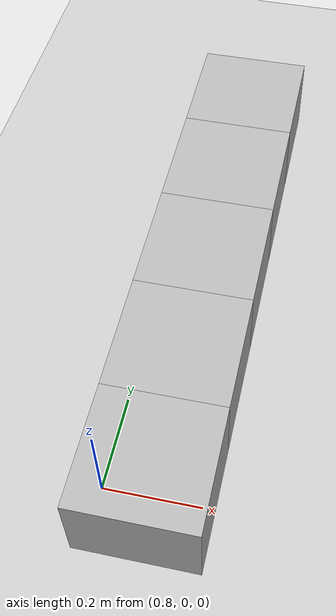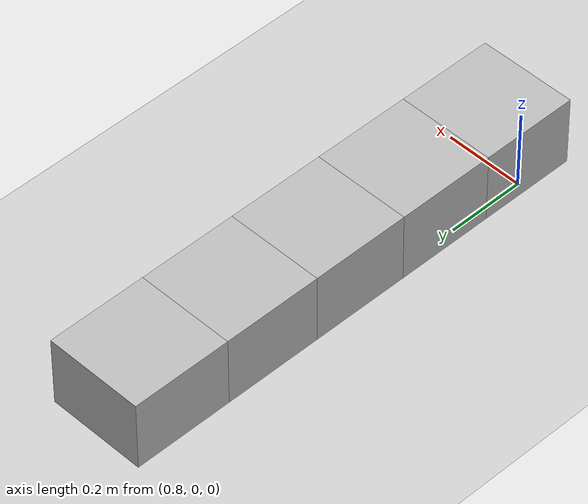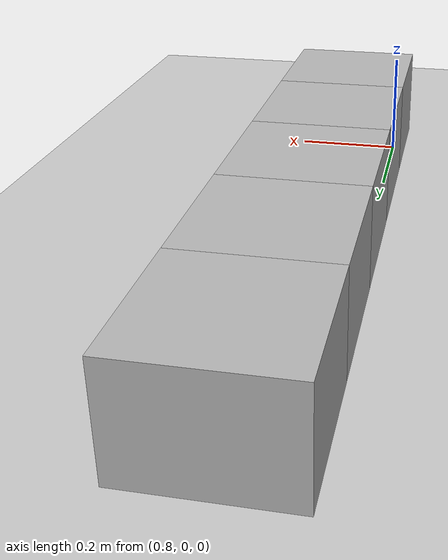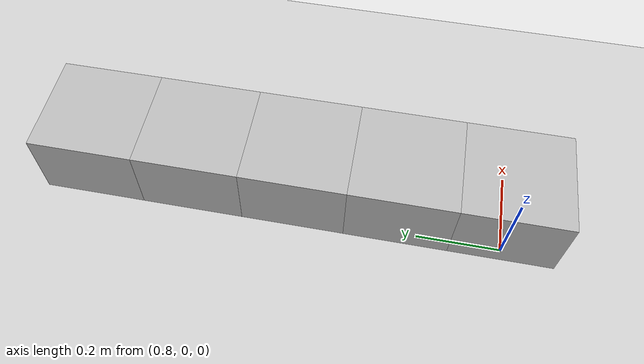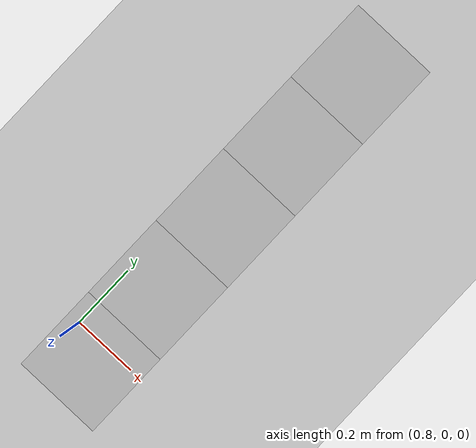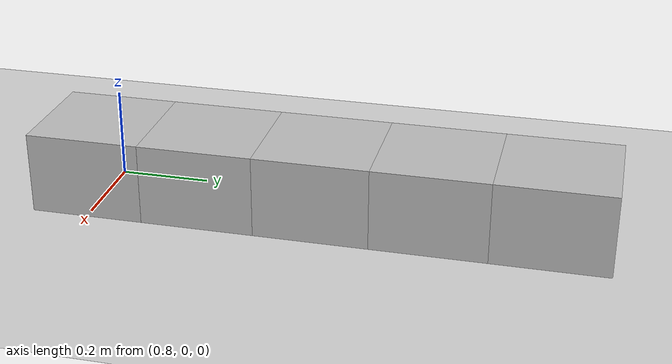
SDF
<sdf version="1.7">
 <world name="default">
  <model name="ground_plane">
   <static>1</static>
   <link name="link">
    <collision name="collision">
     <geometry><plane><normal>0 0 1</normal><size>100 100</size></plane></geometry>
     <surface>
      <contact><collide_bitmask>65535</collide_bitmask></contact>
      <friction><ode><mu>100</mu><mu2>50</mu2></ode></friction>
     </surface>
    </collision>
    <visual name="visual">
     <cast_shadows>0</cast_shadows>
     <geometry><plane><normal>0 0 1</normal><size>100 100</size></plane></geometry>
     <material>
      <script><uri>file://media/materials/scripts/gazebo.material</uri><name>Gazebo/Grey</name></script>
     </material>
    </visual>
   </link>
  </model>
  <light name="sun" type="directional">
   <pose>0 0 10 0 -0 0</pose>
   <diffuse>0.8 0.8 0.8 1</diffuse>
   <specular>0.2 0.2 0.2 1</specular>
   <attenuation>
    <range>1000</range>
    <constant>0.9</constant>
    <linear>0.01</linear>
    <quadratic>0.001</quadratic>
   </attenuation>
   <direction>-0.5 0.1 -0.9</direction>
   <spot><inner_angle>0</inner_angle><outer_angle>0</outer_angle><falloff>0</falloff></spot>
  </light>
  <model name="boxes">
   <pose>-0 -4e-06 -0 0 -0 4e-06</pose>
   <static>0</static>
   <link name="box_0">
    <pose>0.9 0 0.09 0 -0 0</pose>
    <collision name="collision"><geometry><box><size>0.25 0.25 0.18</size></box></geometry></collision>
    <visual name="visual"><geometry><box><size>0.25 0.25 0.18</size></box></geometry></visual>
    <inertial>
     <inertia><ixx>1</ixx><ixy>0</ixy><ixz>0</ixz><iyy>1</iyy><iyz>0</iyz><izz>1</izz></inertia>
     <mass>1</mass>
    </inertial>
   </link>
   <link name="box_1">
    <pose>0.9 0.25 0.09 0 -0 0</pose>
    <collision name="collision"><geometry><box><size>0.25 0.25 0.18</size></box></geometry></collision>
    <visual name="visual"><geometry><box><size>0.25 0.25 0.18</size></box></geometry></visual>
    <inertial>
     <inertia><ixx>1</ixx><ixy>0</ixy><ixz>0</ixz><iyy>1</iyy><iyz>0</iyz><izz>1</izz></inertia>
     <mass>1</mass>
    </inertial>
   </link>
   <link name="box_2">
    <pose>0.9 0.5 0.09 0 -0 0</pose>
    <collision name="collision"><geometry><box><size>0.25 0.25 0.18</size></box></geometry></collision>
    <visual name="visual"><geometry><box><size>0.25 0.25 0.18</size></box></geometry></visual>
    <inertial>
     <inertia><ixx>1</ixx><ixy>0</ixy><ixz>0</ixz><iyy>1</iyy><iyz>0</iyz><izz>1</izz></inertia>
     <mass>1</mass>
    </inertial>
   </link>
   <link name="box_3">
    <pose>0.9 0.75 0.09 0 -0 0</pose>
    <collision name="collision"><geometry><box><size>0.25 0.25 0.18</size></box></geometry></collision>
    <visual name="visual"><geometry><box><size>0.25 0.25 0.18</size></box></geometry></visual>
    <inertial>
     <inertia><ixx>1</ixx><ixy>0</ixy><ixz>0</ixz><iyy>1</iyy><iyz>0</iyz><izz>1</izz></inertia>
     <mass>1</mass>
    </inertial>
   </link>
   <link name="box_4">
    <pose>0.9 1 0.09 0 -0 0</pose>
    <collision name="collision"><geometry><box><size>0.25 0.25 0.18</size></box></geometry></collision>
    <visual name="visual"><geometry><box><size>0.25 0.25 0.18</size></box></geometry></visual>
    <inertial>
     <inertia><ixx>1</ixx><ixy>0</ixy><ixz>0</ixz><iyy>1</iyy><iyz>0</iyz><izz>1</izz></inertia>
     <mass>1</mass>
    </inertial>
   </link>
  </model>
  <gravity>0 0 -9.8</gravity>
  <magnetic_field>6e-06 2.3e-05 -4.2e-05</magnetic_field>
  <atmosphere type="adiabatic"/>
  <physics type="ode">
   <max_step_size>0.001</max_step_size>
   <real_time_factor>1</real_time_factor>
   <real_time_update_rate>1000</real_time_update_rate>
  </physics>
  <scene><ambient>0.4 0.4 0.4 1</ambient><background>0.7 0.7 0.7 1</background><shadows>1</shadows></scene>
  <spherical_coordinates>
   <surface_model>EARTH_WGS84</surface_model>
   <latitude_deg>0</latitude_deg>
   <longitude_deg>0</longitude_deg>
   <elevation>0</elevation>
   <heading_deg>0</heading_deg>
  </spherical_coordinates>
 </world>
</sdf>
